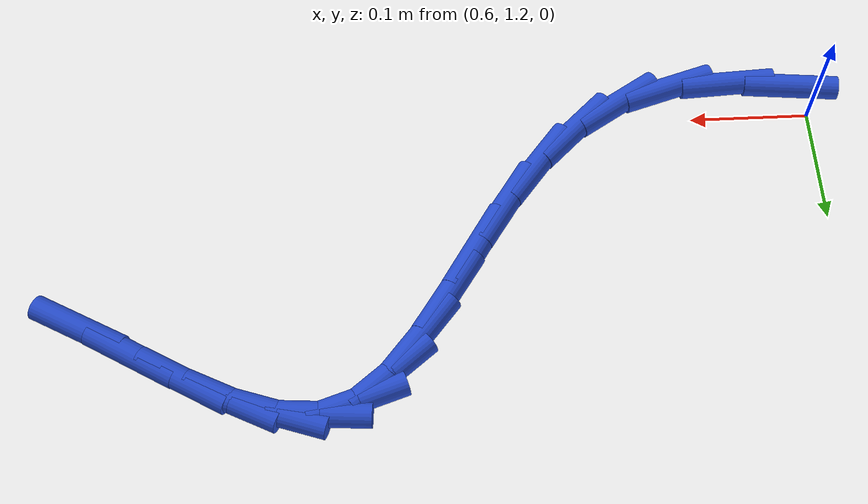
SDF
<sdf version="1.6">
 <world name="default">
  <model name="ground_plane">
   <static>1</static>
   <link name="link">
    <collision name="collision">
     <geometry><plane><normal>0 0 1</normal><size>100 100</size></plane></geometry>
     <surface><friction><ode><mu>100</mu><mu2>50</mu2></ode></friction></surface>
    </collision>
    <visual name="visual">
     <cast_shadows>0</cast_shadows>
     <geometry><plane><normal>0 0 1</normal><size>100 100</size></plane></geometry>
     <material>
      <script><uri>file://media/materials/scripts/gazebo.material</uri><name>Gazebo/WhiteGlow</name></script>
     </material>
    </visual>
   </link>
  </model>
  <model name="line">
   <link name="link_36">
    <pose>0.6122234513784878 1.1748285966761507 0.01 0 1.57 -0.0939691987243753</pose>
    <collision name="collision">
     <geometry><cylinder><radius>0.01</radius><length>0.08</length></cylinder></geometry>
    </collision>
    <visual name="visual">
     <material>
      <script><name>Gazebo/Blue</name><uri>file://media/materials/scripts/gazebo.material</uri></script>
     </material>
     <geometry><cylinder><radius>0.01</radius><length>0.08</length></cylinder></geometry>
    </visual>
   </link>
   <link name="link_37">
    <pose>0.6663293360781197 1.1697292918902946 0.01 0 1.57 0.054276702313486844</pose>
    <collision name="collision">
     <geometry><cylinder><radius>0.01</radius><length>0.08</length></cylinder></geometry>
    </collision>
    <visual name="visual">
     <material>
      <script><name>Gazebo/Blue</name><uri>file://media/materials/scripts/gazebo.material</uri></script>
     </material>
     <geometry><cylinder><radius>0.01</radius><length>0.08</length></cylinder></geometry>
    </visual>
   </link>
   <link name="link_38">
    <pose>0.7178612390459476 1.1725290234869181 0.01 0 1.57 0.30872842150869706</pose>
    <collision name="collision">
     <geometry><cylinder><radius>0.01</radius><length>0.08</length></cylinder></geometry>
    </collision>
    <visual name="visual">
     <material>
      <script><name>Gazebo/Blue</name><uri>file://media/materials/scripts/gazebo.material</uri></script>
     </material>
     <geometry><cylinder><radius>0.01</radius><length>0.08</length></cylinder></geometry>
    </visual>
   </link>
   <link name="link_39">
    <pose>0.7630298515190208 1.186934469309282 0.01 0 1.57 0.5718923769587057</pose>
    <collision name="collision">
     <geometry><cylinder><radius>0.01</radius><length>0.08</length></cylinder></geometry>
    </collision>
    <visual name="visual">
     <material>
      <script><name>Gazebo/Blue</name><uri>file://media/materials/scripts/gazebo.material</uri></script>
     </material>
     <geometry><cylinder><radius>0.01</radius><length>0.08</length></cylinder></geometry>
    </visual>
   </link>
   <link name="link_40">
    <pose>0.8017219592300585 1.2118383209574786 0.01 0 1.57 0.7744549400300602</pose>
    <collision name="collision">
     <geometry><cylinder><radius>0.01</radius><length>0.08</length></cylinder></geometry>
    </collision>
    <visual name="visual">
     <material>
      <script><name>Gazebo/Blue</name><uri>file://media/materials/scripts/gazebo.material</uri></script>
     </material>
     <geometry><cylinder><radius>0.01</radius><length>0.08</length></cylinder></geometry>
    </visual>
   </link>
   <link name="link_41">
    <pose>0.8350864681323628 1.2444804753642456 0.01 0 1.57 0.9109494527060492</pose>
    <collision name="collision">
     <geometry><cylinder><radius>0.01</radius><length>0.08</length></cylinder></geometry>
    </collision>
    <visual name="visual">
     <material>
      <script><name>Gazebo/Blue</name><uri>file://media/materials/scripts/gazebo.material</uri></script>
     </material>
     <geometry><cylinder><radius>0.01</radius><length>0.08</length></cylinder></geometry>
    </visual>
   </link>
   <link name="link_42">
    <pose>0.8642734231441511 1.282099337944235 0.01 0 1.57 0.9897171869193896</pose>
    <collision name="collision">
     <geometry><cylinder><radius>0.01</radius><length>0.08</length></cylinder></geometry>
    </collision>
    <visual name="visual">
     <material>
      <script><name>Gazebo/Blue</name><uri>file://media/materials/scripts/gazebo.material</uri></script>
     </material>
     <geometry><cylinder><radius>0.01</radius><length>0.08</length></cylinder></geometry>
    </visual>
   </link>
   <link name="link_43">
    <pose>0.8904328691836405 1.3219333141121001 0.01 0 1.57 1.0172040169870904</pose>
    <collision name="collision">
     <geometry><cylinder><radius>0.01</radius><length>0.08</length></cylinder></geometry>
    </collision>
    <visual name="visual">
     <material>
      <script><name>Gazebo/Blue</name><uri>file://media/materials/scripts/gazebo.material</uri></script>
     </material>
     <geometry><cylinder><radius>0.01</radius><length>0.08</length></cylinder></geometry>
    </visual>
   </link>
   <link name="link_44">
    <pose>0.9147148511690473 1.3612208092824931 0.01 0 1.57 0.9911467858185824</pose>
    <collision name="collision">
     <geometry><cylinder><radius>0.01</radius><length>0.08</length></cylinder></geometry>
    </collision>
    <visual name="visual">
     <material>
      <script><name>Gazebo/Blue</name><uri>file://media/materials/scripts/gazebo.material</uri></script>
     </material>
     <geometry><cylinder><radius>0.01</radius><length>0.08</length></cylinder></geometry>
    </visual>
   </link>
   <link name="link_45">
    <pose>0.9382694140185884 1.3972002288700662 0.01 0 1.57 0.8950493228421793</pose>
    <collision name="collision">
     <geometry><cylinder><radius>0.01</radius><length>0.08</length></cylinder></geometry>
    </collision>
    <visual name="visual">
     <material>
      <script><name>Gazebo/Blue</name><uri>file://media/materials/scripts/gazebo.material</uri></script>
     </material>
     <geometry><cylinder><radius>0.01</radius><length>0.08</length></cylinder></geometry>
    </visual>
   </link>
   <link name="link_46">
    <pose>0.9622466026504807 1.4271099782894723 0.01 0 1.57 0.689796568144273</pose>
    <collision name="collision">
     <geometry><cylinder><radius>0.01</radius><length>0.08</length></cylinder></geometry>
    </collision>
    <visual name="visual">
     <material>
      <script><name>Gazebo/Blue</name><uri>file://media/materials/scripts/gazebo.material</uri></script>
     </material>
     <geometry><cylinder><radius>0.01</radius><length>0.08</length></cylinder></geometry>
    </visual>
   </link>
   <link name="link_47">
    <pose>0.987796461982941 1.4481884629553647 0.01 0 1.57 0.3268157725394755</pose>
    <collision name="collision">
     <geometry><cylinder><radius>0.01</radius><length>0.08</length></cylinder></geometry>
    </collision>
    <visual name="visual">
     <material>
      <script><name>Gazebo/Blue</name><uri>file://media/materials/scripts/gazebo.material</uri></script>
     </material>
     <geometry><cylinder><radius>0.01</radius><length>0.08</length></cylinder></geometry>
    </visual>
   </link>
   <link name="link_48">
    <pose>1.0160465663643046 1.4577644268344314 0.01 0 1.57 -0.06968947523810112</pose>
    <collision name="collision">
     <geometry><cylinder><radius>0.01</radius><length>0.08</length></cylinder></geometry>
    </collision>
    <visual name="visual">
     <material>
      <script><name>Gazebo/Blue</name><uri>file://media/materials/scripts/gazebo.material</uri></script>
     </material>
     <geometry><cylinder><radius>0.01</radius><length>0.08</length></cylinder></geometry>
    </visual>
   </link>
   <link name="link_49">
    <pose>1.0475274286184637 1.4555669835270322 0.01 0 1.57 -0.3247370791920183</pose>
    <collision name="collision">
     <geometry><cylinder><radius>0.01</radius><length>0.08</length></cylinder></geometry>
    </collision>
    <visual name="visual">
     <material>
      <script><name>Gazebo/Blue</name><uri>file://media/materials/scripts/gazebo.material</uri></script>
     </material>
     <geometry><cylinder><radius>0.01</radius><length>0.08</length></cylinder></geometry>
    </visual>
   </link>
   <link name="link_50">
    <pose>1.082124197316028 1.443919807985771 0.01 0 1.57 -0.46068617987208016</pose>
    <collision name="collision">
     <geometry><cylinder><radius>0.01</radius><length>0.08</length></cylinder></geometry>
    </collision>
    <visual name="visual">
     <material>
      <script><name>Gazebo/Blue</name><uri>file://media/materials/scripts/gazebo.material</uri></script>
     </material>
     <geometry><cylinder><radius>0.01</radius><length>0.08</length></cylinder></geometry>
    </visual>
   </link>
   <link name="link_51">
    <pose>1.1196898715803825 1.4252758257575457 0.01 0 1.57 -0.5211828625674896</pose>
    <collision name="collision">
     <geometry><cylinder><radius>0.01</radius><length>0.08</length></cylinder></geometry>
    </collision>
    <visual name="visual">
     <material>
      <script><name>Gazebo/Blue</name><uri>file://media/materials/scripts/gazebo.material</uri></script>
     </material>
     <geometry><cylinder><radius>0.01</radius><length>0.08</length></cylinder></geometry>
    </visual>
   </link>
   <link name="link_52">
    <pose>1.160077450534908 1.4020879623892533 0.01 0 1.57 -0.530825549980629</pose>
    <collision name="collision">
     <geometry><cylinder><radius>0.01</radius><length>0.08</length></cylinder></geometry>
    </collision>
    <visual name="visual">
     <material>
      <script><name>Gazebo/Blue</name><uri>file://media/materials/scripts/gazebo.material</uri></script>
     </material>
     <geometry><cylinder><radius>0.01</radius><length>0.08</length></cylinder></geometry>
    </visual>
   </link>
   <link name="link_53">
    <pose>1.20313993330299 1.3768091434277914 0.01 0 1.57 -0.500180867023884</pose>
    <collision name="collision">
     <geometry><cylinder><radius>0.01</radius><length>0.08</length></cylinder></geometry>
    </collision>
    <visual name="visual">
     <material>
      <script><name>Gazebo/Blue</name><uri>file://media/materials/scripts/gazebo.material</uri></script>
     </material>
     <geometry><cylinder><radius>0.01</radius><length>0.08</length></cylinder></geometry>
    </visual>
   </link>
  </model>
 </world>
</sdf>
